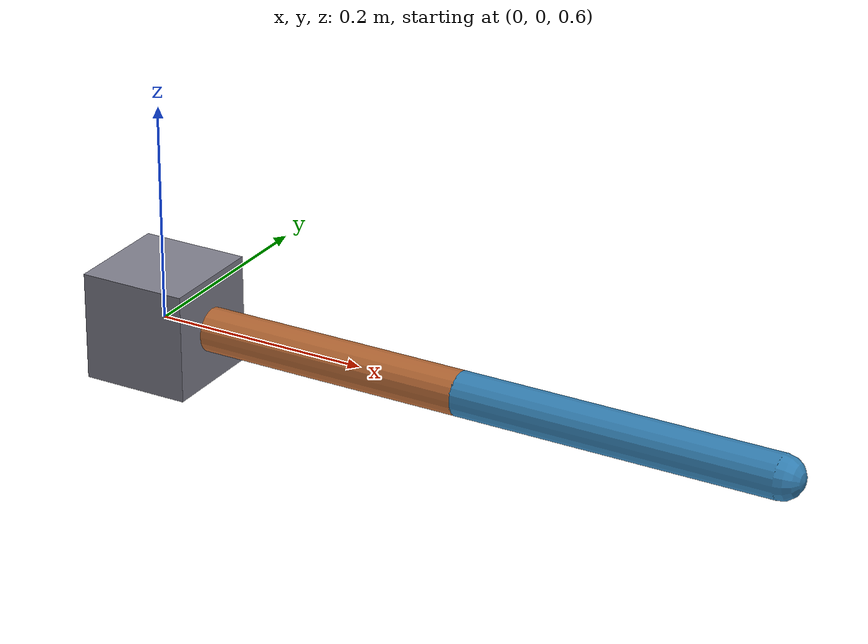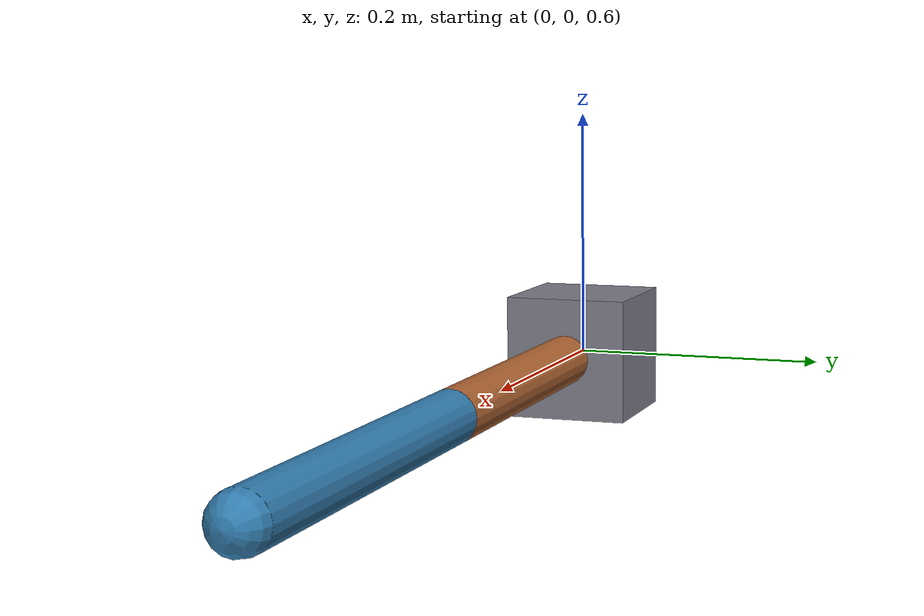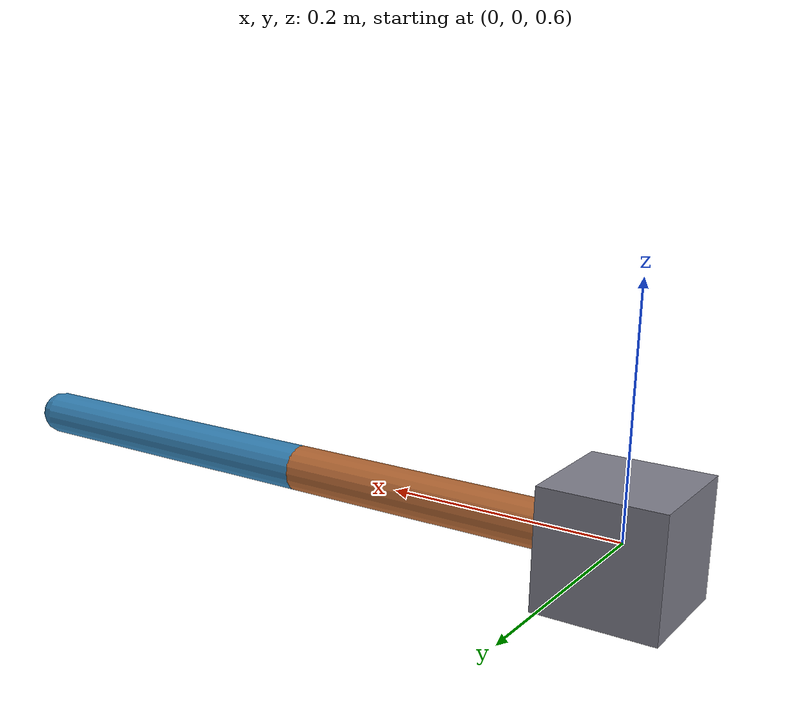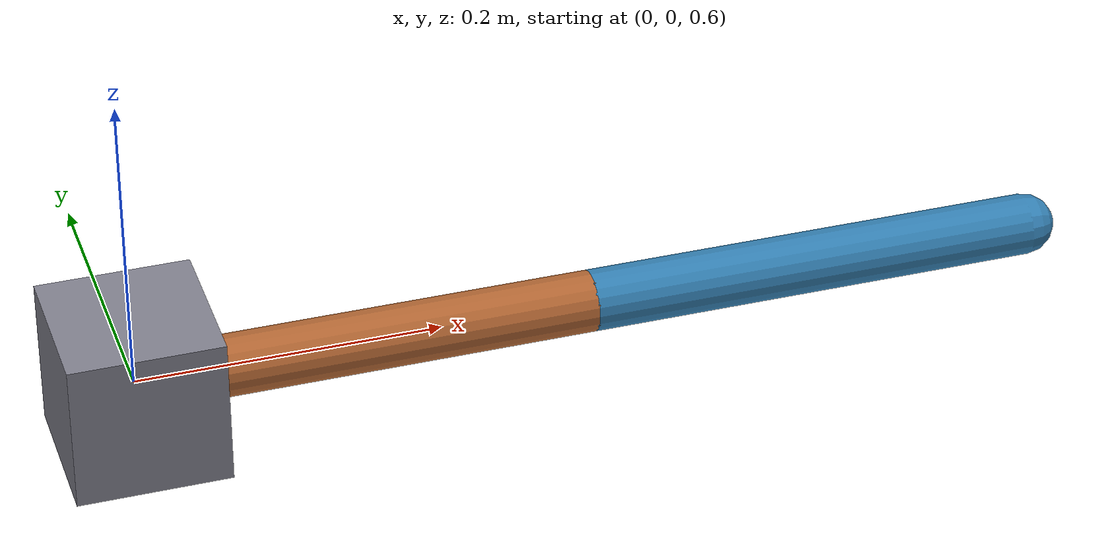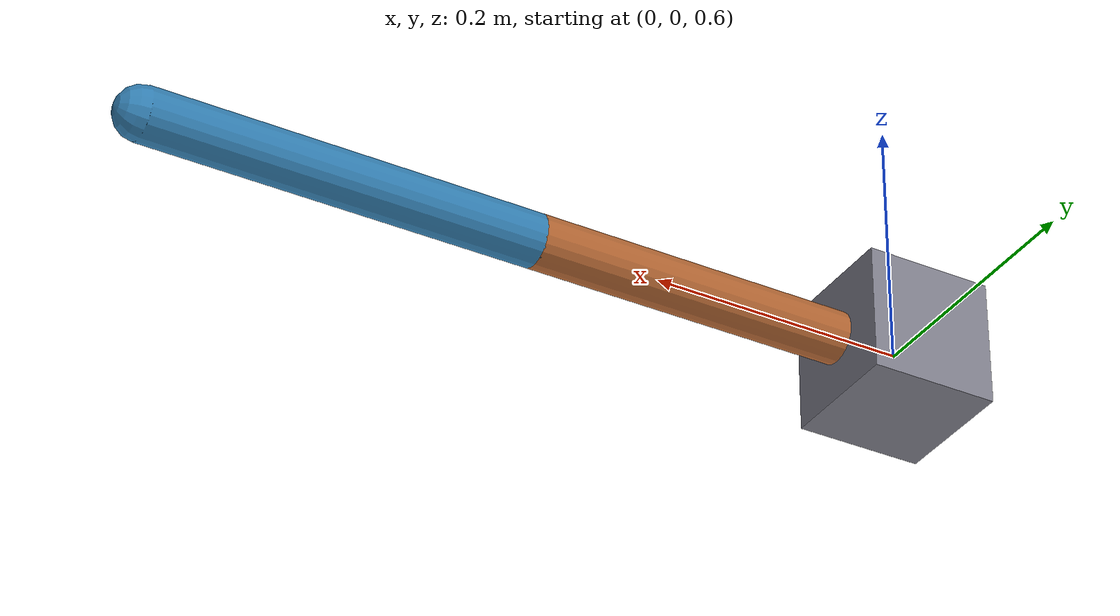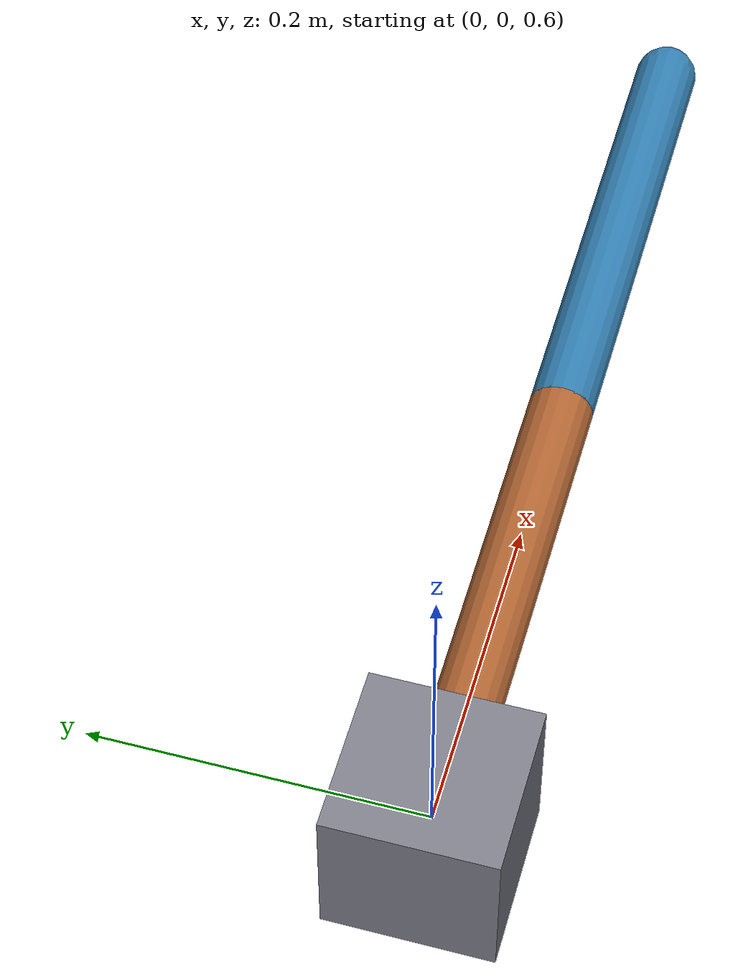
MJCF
<mujoco model="xmsim arm">
  <compiler angle="radian" autolimits="true"/>
  <option timestep="0.002" integrator="implicitfast"/>

  <worldbody>
    <light pos="0 0 2" dir="0 0 -1" directional="true"/>
    <body name="chassis" pos="0 0 0.6">
      <!-- fixed base (no joint): ground_truth reads its static pose -->
      <geom type="box" size="0.05 0.05 0.05" mass="1.0" rgba="0.5 0.5 0.55 1"/>
      <site name="imu" pos="0 0 0" size="0.005"/>
      <body name="link1" pos="0 0 0">
        <joint name="j1" type="hinge" axis="0 1 0" damping="0.1"/>
        <geom type="capsule" fromto="0 0 0 0.3 0 0" size="0.02" mass="0.3"
              rgba="0.7 0.4 0.2 1"/>
        <body name="link2" pos="0.3 0 0">
          <joint name="j2" type="hinge" axis="0 1 0" damping="0.1"/>
          <geom type="capsule" fromto="0 0 0 0.3 0 0" size="0.02" mass="0.2"
                rgba="0.2 0.5 0.7 1"/>
        </body>
      </body>
    </body>
  </worldbody>

  <actuator>
    <motor joint="j1" name="j1" gear="1" ctrlrange="-3 3"/>
    <motor joint="j2" name="j2" gear="1" ctrlrange="-3 3"/>
  </actuator>

  <sensor>
    <!-- Only an IMU — deliberately NO jointpos/jointvel (read qpos/qvel direct). -->
    <gyro site="imu" name="imu_gyro"/>
    <accelerometer site="imu" name="imu_acc"/>
    <framequat objtype="site" objname="imu" name="imu_quat"/>
  </sensor>
</mujoco>
